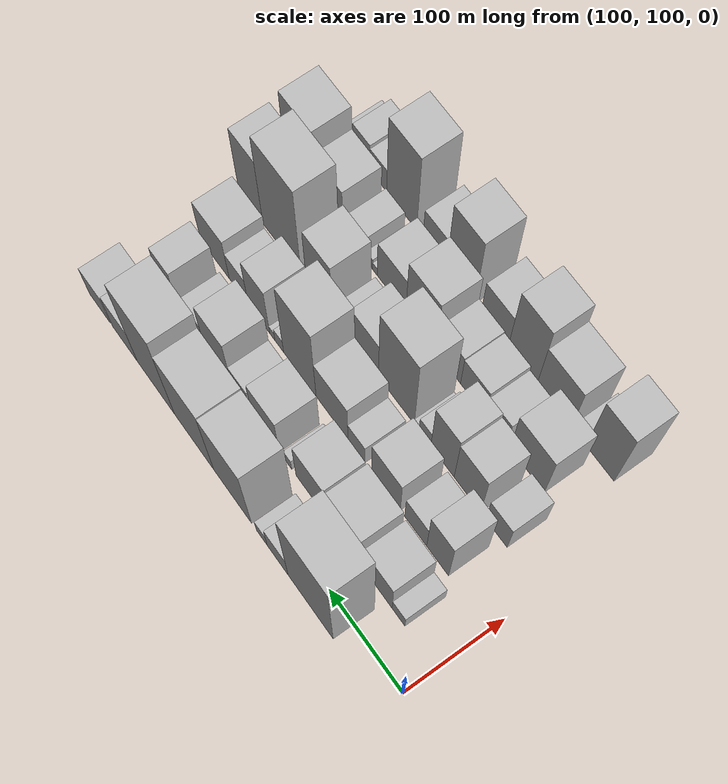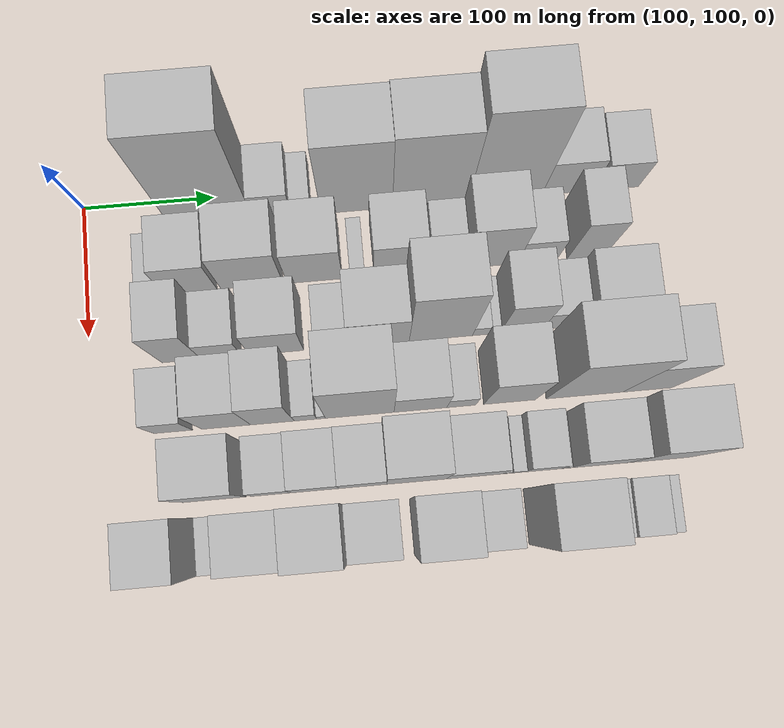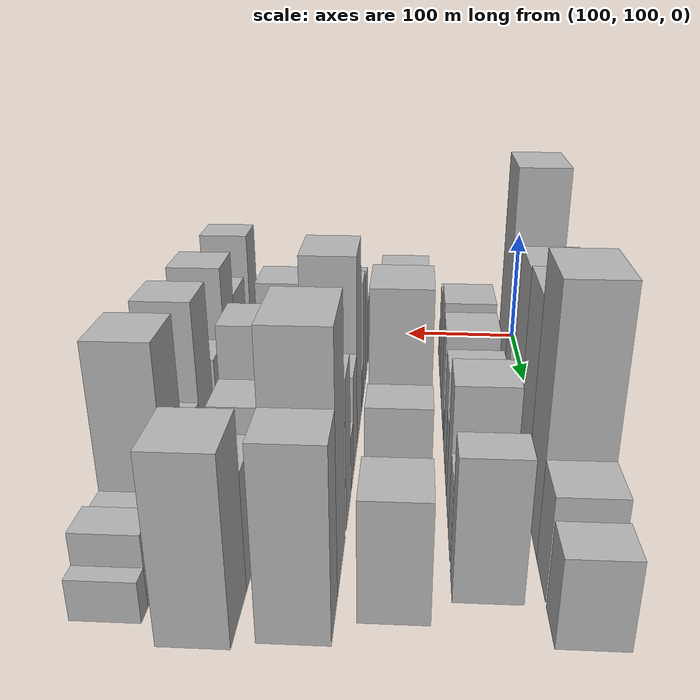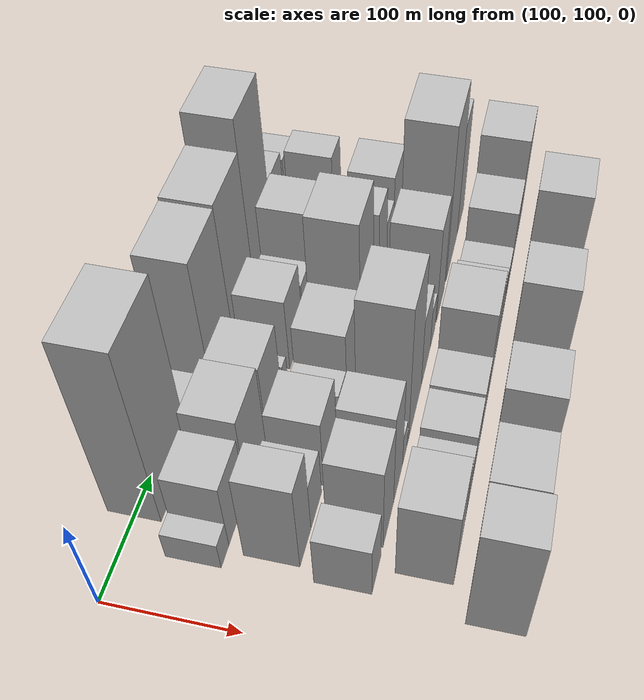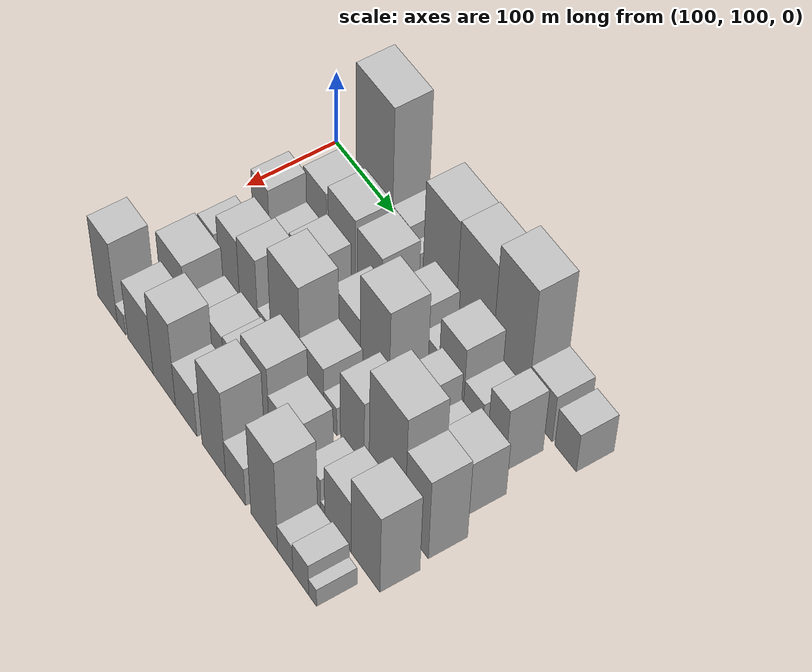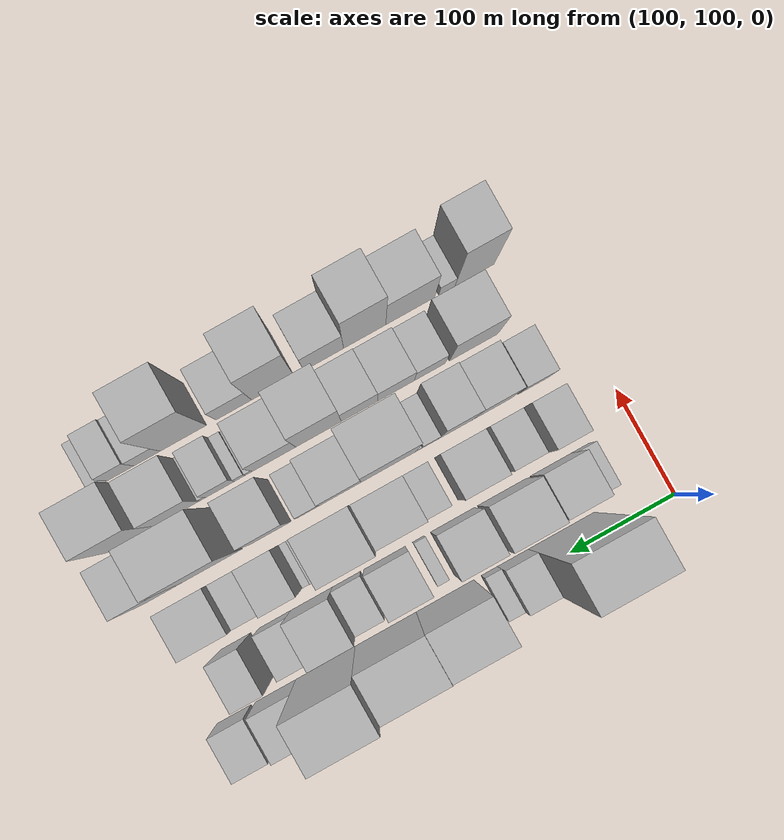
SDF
<sdf version="1.6">
 <world name="default">
  <model name="building_34">
   <static>1</static>
   <pose>100.0000 197.2322 0 0.000000 0.000000 0.000000</pose>
   <link name="link">
    <pose>0 0 94.50 0 0 0</pose>
    <collision name="collision"><geometry><box><size>40.0000 62.6101 189.0000</size></box></geometry></collision>
    <visual name="visual">
     <cast_shadows>0</cast_shadows>
     <geometry><box><size>40.0000 62.6101 189.0000</size></box></geometry>
     <material>
      <script>
       <uri>model://HANNAS_wall/materials/scripts</uri>
       <uri>model://HANNAS_wall/materials/textures</uri>
       <name>vrc/HANNAS_wall</name>
      </script>
     </material>
    </visual>
   </link>
  </model>
  <model name="building_35">
   <static>1</static>
   <pose>100.0000 243.2534 0 0.000000 0.000000 0.000000</pose>
   <link name="link">
    <pose>0 0 27.00 0 0 0</pose>
    <collision name="collision"><geometry><box><size>40.0000 29.4323 54.0000</size></box></geometry></collision>
    <visual name="visual">
     <cast_shadows>0</cast_shadows>
     <geometry><box><size>40.0000 29.4323 54.0000</size></box></geometry>
     <material>
      <script>
       <uri>model://HANNAS_wall/materials/scripts</uri>
       <uri>model://HANNAS_wall/materials/textures</uri>
       <name>vrc/HANNAS_wall</name>
      </script>
     </material>
    </visual>
   </link>
  </model>
  <model name="building_36">
   <static>1</static>
   <pose>100.0000 265.6831 0 0.000000 0.000000 0.000000</pose>
   <link name="link">
    <pose>0 0 15.00 0 0 0</pose>
    <collision name="collision"><geometry><box><size>40.0000 15.4270 30.0000</size></box></geometry></collision>
    <visual name="visual">
     <cast_shadows>0</cast_shadows>
     <geometry><box><size>40.0000 15.4270 30.0000</size></box></geometry>
     <material>
      <script>
       <uri>model://HANNAS_wall/materials/scripts</uri>
       <uri>model://HANNAS_wall/materials/textures</uri>
       <name>vrc/HANNAS_wall</name>
      </script>
     </material>
    </visual>
   </link>
  </model>
  <model name="building_37">
   <static>1</static>
   <pose>100.0000 307.7641 0 0.000000 0.000000 0.000000</pose>
   <link name="link">
    <pose>0 0 72.00 0 0 0</pose>
    <collision name="collision"><geometry><box><size>40.0000 54.7350 144.0000</size></box></geometry></collision>
    <visual name="visual">
     <cast_shadows>0</cast_shadows>
     <geometry><box><size>40.0000 54.7350 144.0000</size></box></geometry>
     <material>
      <script>
       <uri>model://HANNAS_wall/materials/scripts</uri>
       <uri>model://HANNAS_wall/materials/textures</uri>
       <name>vrc/HANNAS_wall</name>
      </script>
     </material>
    </visual>
   </link>
  </model>
  <model name="building_38">
   <static>1</static>
   <pose>100.0000 364.0918 0 0.000000 0.000000 0.000000</pose>
   <link name="link">
    <pose>0 0 73.50 0 0 0</pose>
    <collision name="collision"><geometry><box><size>40.0000 57.9204 147.0000</size></box></geometry></collision>
    <visual name="visual">
     <cast_shadows>0</cast_shadows>
     <geometry><box><size>40.0000 57.9204 147.0000</size></box></geometry>
     <material>
      <script>
       <uri>model://HANNAS_wall/materials/scripts</uri>
       <uri>model://HANNAS_wall/materials/textures</uri>
       <name>vrc/HANNAS_wall</name>
      </script>
     </material>
    </visual>
   </link>
  </model>
  <model name="building_39">
   <static>1</static>
   <pose>100.0000 421.2244 0 0.000000 0.000000 0.000000</pose>
   <link name="link">
    <pose>0 0 88.50 0 0 0</pose>
    <collision name="collision"><geometry><box><size>40.0000 56.3448 177.0000</size></box></geometry></collision>
    <visual name="visual">
     <cast_shadows>0</cast_shadows>
     <geometry><box><size>40.0000 56.3448 177.0000</size></box></geometry>
     <material>
      <script>
       <uri>model://HANNAS_wall/materials/scripts</uri>
       <uri>model://HANNAS_wall/materials/textures</uri>
       <name>vrc/HANNAS_wall</name>
      </script>
     </material>
    </visual>
   </link>
  </model>
  <model name="building_40">
   <static>1</static>
   <pose>100.0000 468.6178 0 0.000000 0.000000 0.000000</pose>
   <link name="link">
    <pose>0 0 34.50 0 0 0</pose>
    <collision name="collision"><geometry><box><size>40.0000 38.4421 69.0000</size></box></geometry></collision>
    <visual name="visual">
     <cast_shadows>0</cast_shadows>
     <geometry><box><size>40.0000 38.4421 69.0000</size></box></geometry>
     <material>
      <script>
       <uri>model://HANNAS_wall/materials/scripts</uri>
       <uri>model://HANNAS_wall/materials/textures</uri>
       <name>vrc/HANNAS_wall</name>
      </script>
     </material>
    </visual>
   </link>
  </model>
  <model name="building_41">
   <static>1</static>
   <pose>100.0000 508.0312 0 0.000000 0.000000 0.000000</pose>
   <link name="link">
    <pose>0 0 28.50 0 0 0</pose>
    <collision name="collision"><geometry><box><size>40.0000 32.3847 57.0000</size></box></geometry></collision>
    <visual name="visual">
     <cast_shadows>0</cast_shadows>
     <geometry><box><size>40.0000 32.3847 57.0000</size></box></geometry>
     <material>
      <script>
       <uri>model://HANNAS_wall/materials/scripts</uri>
       <uri>model://HANNAS_wall/materials/textures</uri>
       <name>vrc/HANNAS_wall</name>
      </script>
     </material>
    </visual>
   </link>
  </model>
  <model name="building_78">
   <static>1</static>
   <pose>152.0000 149.9061 0 0.000000 0.000000 0.000000</pose>
   <link name="link">
    <pose>0 0 15.00 0 0 0</pose>
    <collision name="collision"><geometry><box><size>40.0000 17.3303 30.0000</size></box></geometry></collision>
    <visual name="visual">
     <cast_shadows>0</cast_shadows>
     <geometry><box><size>40.0000 17.3303 30.0000</size></box></geometry>
     <material>
      <script>
       <uri>model://HANNAS_wall/materials/scripts</uri>
       <uri>model://HANNAS_wall/materials/textures</uri>
       <name>vrc/HANNAS_wall</name>
      </script>
     </material>
    </visual>
   </link>
  </model>
  <model name="building_79">
   <static>1</static>
   <pose>152.0000 178.2462 0 0.000000 0.000000 0.000000</pose>
   <link name="link">
    <pose>0 0 36.00 0 0 0</pose>
    <collision name="collision"><geometry><box><size>40.0000 39.3499 72.0000</size></box></geometry></collision>
    <visual name="visual">
     <cast_shadows>0</cast_shadows>
     <geometry><box><size>40.0000 39.3499 72.0000</size></box></geometry>
     <material>
      <script>
       <uri>model://HANNAS_wall/materials/scripts</uri>
       <uri>model://HANNAS_wall/materials/textures</uri>
       <name>vrc/HANNAS_wall</name>
      </script>
     </material>
    </visual>
   </link>
  </model>
  <model name="building_80">
   <static>1</static>
   <pose>152.0000 224.3932 0 0.000000 0.000000 0.000000</pose>
   <link name="link">
    <pose>0 0 43.50 0 0 0</pose>
    <collision name="collision"><geometry><box><size>40.0000 46.9440 87.0000</size></box></geometry></collision>
    <visual name="visual">
     <cast_shadows>0</cast_shadows>
     <geometry><box><size>40.0000 46.9440 87.0000</size></box></geometry>
     <material>
      <script>
       <uri>model://HANNAS_wall/materials/scripts</uri>
       <uri>model://HANNAS_wall/materials/textures</uri>
       <name>vrc/HANNAS_wall</name>
      </script>
     </material>
    </visual>
   </link>
  </model>
  <model name="building_81">
   <static>1</static>
   <pose>152.0000 271.6596 0 0.000000 0.000000 0.000000</pose>
   <link name="link">
    <pose>0 0 40.50 0 0 0</pose>
    <collision name="collision"><geometry><box><size>40.0000 41.5888 81.0000</size></box></geometry></collision>
    <visual name="visual">
     <cast_shadows>0</cast_shadows>
     <geometry><box><size>40.0000 41.5888 81.0000</size></box></geometry>
     <material>
      <script>
       <uri>model://HANNAS_wall/materials/scripts</uri>
       <uri>model://HANNAS_wall/materials/textures</uri>
       <name>vrc/HANNAS_wall</name>
      </script>
     </material>
    </visual>
   </link>
  </model>
  <model name="building_82">
   <static>1</static>
   <pose>152.0000 303.9292 0 0.000000 0.000000 0.000000</pose>
   <link name="link">
    <pose>0 0 12.00 0 0 0</pose>
    <collision name="collision"><geometry><box><size>40.0000 10.9506 24.0000</size></box></geometry></collision>
    <visual name="visual">
     <cast_shadows>0</cast_shadows>
     <geometry><box><size>40.0000 10.9506 24.0000</size></box></geometry>
     <material>
      <script>
       <uri>model://HANNAS_wall/materials/scripts</uri>
       <uri>model://HANNAS_wall/materials/textures</uri>
       <name>vrc/HANNAS_wall</name>
      </script>
     </material>
    </visual>
   </link>
  </model>
  <model name="building_83">
   <static>1</static>
   <pose>152.0000 336.1044 0 0.000000 0.000000 0.000000</pose>
   <link name="link">
    <pose>0 0 39.00 0 0 0</pose>
    <collision name="collision"><geometry><box><size>40.0000 39.3997 78.0000</size></box></geometry></collision>
    <visual name="visual">
     <cast_shadows>0</cast_shadows>
     <geometry><box><size>40.0000 39.3997 78.0000</size></box></geometry>
     <material>
      <script>
       <uri>model://HANNAS_wall/materials/scripts</uri>
       <uri>model://HANNAS_wall/materials/textures</uri>
       <name>vrc/HANNAS_wall</name>
      </script>
     </material>
    </visual>
   </link>
  </model>
  <model name="building_84">
   <static>1</static>
   <pose>152.0000 372.1476 0 0.000000 0.000000 0.000000</pose>
   <link name="link">
    <pose>0 0 25.50 0 0 0</pose>
    <collision name="collision"><geometry><box><size>40.0000 26.6867 51.0000</size></box></geometry></collision>
    <visual name="visual">
     <cast_shadows>0</cast_shadows>
     <geometry><box><size>40.0000 26.6867 51.0000</size></box></geometry>
     <material>
      <script>
       <uri>model://HANNAS_wall/materials/scripts</uri>
       <uri>model://HANNAS_wall/materials/textures</uri>
       <name>vrc/HANNAS_wall</name>
      </script>
     </material>
    </visual>
   </link>
  </model>
  <model name="building_85">
   <static>1</static>
   <pose>152.0000 405.2490 0 0.000000 0.000000 0.000000</pose>
   <link name="link">
    <pose>0 0 51.00 0 0 0</pose>
    <collision name="collision"><geometry><box><size>40.0000 39.5160 102.0000</size></box></geometry></collision>
    <visual name="visual">
     <cast_shadows>0</cast_shadows>
     <geometry><box><size>40.0000 39.5160 102.0000</size></box></geometry>
     <material>
      <script>
       <uri>model://HANNAS_wall/materials/scripts</uri>
       <uri>model://HANNAS_wall/materials/textures</uri>
       <name>vrc/HANNAS_wall</name>
      </script>
     </material>
    </visual>
   </link>
  </model>
  <model name="building_86">
   <static>1</static>
   <pose>152.0000 439.9806 0 0.000000 0.000000 0.000000</pose>
   <link name="link">
    <pose>0 0 28.50 0 0 0</pose>
    <collision name="collision"><geometry><box><size>40.0000 29.9473 57.0000</size></box></geometry></collision>
    <visual name="visual">
     <cast_shadows>0</cast_shadows>
     <geometry><box><size>40.0000 29.9473 57.0000</size></box></geometry>
     <material>
      <script>
       <uri>model://HANNAS_wall/materials/scripts</uri>
       <uri>model://HANNAS_wall/materials/textures</uri>
       <name>vrc/HANNAS_wall</name>
      </script>
     </material>
    </visual>
   </link>
  </model>
  <model name="building_87">
   <static>1</static>
   <pose>152.0000 476.9784 0 0.000000 0.000000 0.000000</pose>
   <link name="link">
    <pose>0 0 46.50 0 0 0</pose>
    <collision name="collision"><geometry><box><size>40.0000 28.0482 93.0000</size></box></geometry></collision>
    <visual name="visual">
     <cast_shadows>0</cast_shadows>
     <geometry><box><size>40.0000 28.0482 93.0000</size></box></geometry>
     <material>
      <script>
       <uri>model://HANNAS_wall/materials/scripts</uri>
       <uri>model://HANNAS_wall/materials/textures</uri>
       <name>vrc/HANNAS_wall</name>
      </script>
     </material>
    </visual>
   </link>
  </model>
  <model name="building_128">
   <static>1</static>
   <pose>204.0000 168.3808 0 0.000000 0.000000 0.000000</pose>
   <link name="link">
    <pose>0 0 48.00 0 0 0</pose>
    <collision name="collision"><geometry><box><size>40.0000 29.6298 96.0000</size></box></geometry></collision>
    <visual name="visual">
     <cast_shadows>0</cast_shadows>
     <geometry><box><size>40.0000 29.6298 96.0000</size></box></geometry>
     <material>
      <script>
       <uri>model://HANNAS_wall/materials/scripts</uri>
       <uri>model://HANNAS_wall/materials/textures</uri>
       <name>vrc/HANNAS_wall</name>
      </script>
     </material>
    </visual>
   </link>
  </model>
  <model name="building_129">
   <static>1</static>
   <pose>204.0000 198.1995 0 0.000000 0.000000 0.000000</pose>
   <link name="link">
    <pose>0 0 27.00 0 0 0</pose>
    <collision name="collision"><geometry><box><size>40.0000 30.0076 54.0000</size></box></geometry></collision>
    <visual name="visual">
     <cast_shadows>0</cast_shadows>
     <geometry><box><size>40.0000 30.0076 54.0000</size></box></geometry>
     <material>
      <script>
       <uri>model://HANNAS_wall/materials/scripts</uri>
       <uri>model://HANNAS_wall/materials/textures</uri>
       <name>vrc/HANNAS_wall</name>
      </script>
     </material>
    </visual>
   </link>
  </model>
  <model name="building_130">
   <static>1</static>
   <pose>204.0000 239.2770 0 0.000000 0.000000 0.000000</pose>
   <link name="link">
    <pose>0 0 37.50 0 0 0</pose>
    <collision name="collision"><geometry><box><size>40.0000 40.1474 75.0000</size></box></geometry></collision>
    <visual name="visual">
     <cast_shadows>0</cast_shadows>
     <geometry><box><size>40.0000 40.1474 75.0000</size></box></geometry>
     <material>
      <script>
       <uri>model://HANNAS_wall/materials/scripts</uri>
       <uri>model://HANNAS_wall/materials/textures</uri>
       <name>vrc/HANNAS_wall</name>
      </script>
     </material>
    </visual>
   </link>
  </model>
  <model name="building_131">
   <static>1</static>
   <pose>204.0000 280.3859 0 0.000000 0.000000 0.000000</pose>
   <link name="link">
    <pose>0 0 21.00 0 0 0</pose>
    <collision name="collision"><geometry><box><size>40.0000 24.0703 42.0000</size></box></geometry></collision>
    <visual name="visual">
     <cast_shadows>0</cast_shadows>
     <geometry><box><size>40.0000 24.0703 42.0000</size></box></geometry>
     <material>
      <script>
       <uri>model://HANNAS_wall/materials/scripts</uri>
       <uri>model://HANNAS_wall/materials/textures</uri>
       <name>vrc/HANNAS_wall</name>
      </script>
     </material>
    </visual>
   </link>
  </model>
  <model name="building_132">
   <static>1</static>
   <pose>204.0000 315.2987 0 0.000000 0.000000 0.000000</pose>
   <link name="link">
    <pose>0 0 40.50 0 0 0</pose>
    <collision name="collision"><geometry><box><size>40.0000 45.7554 81.0000</size></box></geometry></collision>
    <visual name="visual">
     <cast_shadows>0</cast_shadows>
     <geometry><box><size>40.0000 45.7554 81.0000</size></box></geometry>
     <material>
      <script>
       <uri>model://HANNAS_wall/materials/scripts</uri>
       <uri>model://HANNAS_wall/materials/textures</uri>
       <name>vrc/HANNAS_wall</name>
      </script>
     </material>
    </visual>
   </link>
  </model>
  <model name="building_133">
   <static>1</static>
   <pose>204.0000 361.9023 0 0.000000 0.000000 0.000000</pose>
   <link name="link">
    <pose>0 0 73.50 0 0 0</pose>
    <collision name="collision"><geometry><box><size>40.0000 47.4518 147.0000</size></box></geometry></collision>
    <visual name="visual">
     <cast_shadows>0</cast_shadows>
     <geometry><box><size>40.0000 47.4518 147.0000</size></box></geometry>
     <material>
      <script>
       <uri>model://HANNAS_wall/materials/scripts</uri>
       <uri>model://HANNAS_wall/materials/textures</uri>
       <name>vrc/HANNAS_wall</name>
      </script>
     </material>
    </visual>
   </link>
  </model>
  <model name="building_134">
   <static>1</static>
   <pose>204.0000 392.0305 0 0.000000 0.000000 0.000000</pose>
   <link name="link">
    <pose>0 0 13.50 0 0 0</pose>
    <collision name="collision"><geometry><box><size>40.0000 12.8045 27.0000</size></box></geometry></collision>
    <visual name="visual">
     <cast_shadows>0</cast_shadows>
     <geometry><box><size>40.0000 12.8045 27.0000</size></box></geometry>
     <material>
      <script>
       <uri>model://HANNAS_wall/materials/scripts</uri>
       <uri>model://HANNAS_wall/materials/textures</uri>
       <name>vrc/HANNAS_wall</name>
      </script>
     </material>
    </visual>
   </link>
  </model>
  <model name="building_135">
   <static>1</static>
   <pose>204.0000 402.2379 0 0.000000 0.000000 0.000000</pose>
   <link name="link">
    <pose>0 0 9.00 0 0 0</pose>
    <collision name="collision"><geometry><box><size>40.0000 7.6104 18.0000</size></box></geometry></collision>
    <visual name="visual">
     <cast_shadows>0</cast_shadows>
     <geometry><box><size>40.0000 7.6104 18.0000</size></box></geometry>
     <material>
      <script>
       <uri>model://HANNAS_wall/materials/scripts</uri>
       <uri>model://HANNAS_wall/materials/textures</uri>
       <name>vrc/HANNAS_wall</name>
      </script>
     </material>
    </visual>
   </link>
  </model>
  <model name="building_136">
   <static>1</static>
   <pose>204.0000 422.0237 0 0.000000 0.000000 0.000000</pose>
   <link name="link">
    <pose>0 0 46.50 0 0 0</pose>
    <collision name="collision"><geometry><box><size>40.0000 31.9613 93.0000</size></box></geometry></collision>
    <visual name="visual">
     <cast_shadows>0</cast_shadows>
     <geometry><box><size>40.0000 31.9613 93.0000</size></box></geometry>
     <material>
      <script>
       <uri>model://HANNAS_wall/materials/scripts</uri>
       <uri>model://HANNAS_wall/materials/textures</uri>
       <name>vrc/HANNAS_wall</name>
      </script>
     </material>
    </visual>
   </link>
  </model>
  <model name="building_137">
   <static>1</static>
   <pose>204.0000 452.4286 0 0.000000 0.000000 0.000000</pose>
   <link name="link">
    <pose>0 0 27.00 0 0 0</pose>
    <collision name="collision"><geometry><box><size>40.0000 28.8484 54.0000</size></box></geometry></collision>
    <visual name="visual">
     <cast_shadows>0</cast_shadows>
     <geometry><box><size>40.0000 28.8484 54.0000</size></box></geometry>
     <material>
      <script>
       <uri>model://HANNAS_wall/materials/scripts</uri>
       <uri>model://HANNAS_wall/materials/textures</uri>
       <name>vrc/HANNAS_wall</name>
      </script>
     </material>
    </visual>
   </link>
  </model>
  <model name="building_138">
   <static>1</static>
   <pose>204.0000 488.7313 0 0.000000 0.000000 0.000000</pose>
   <link name="link">
    <pose>0 0 39.00 0 0 0</pose>
    <collision name="collision"><geometry><box><size>40.0000 43.7572 78.0000</size></box></geometry></collision>
    <visual name="visual">
     <cast_shadows>0</cast_shadows>
     <geometry><box><size>40.0000 43.7572 78.0000</size></box></geometry>
     <material>
      <script>
       <uri>model://HANNAS_wall/materials/scripts</uri>
       <uri>model://HANNAS_wall/materials/textures</uri>
       <name>vrc/HANNAS_wall</name>
      </script>
     </material>
    </visual>
   </link>
  </model>
  <model name="building_182">
   <static>1</static>
   <pose>256.0000 158.9666 0 0.000000 0.000000 0.000000</pose>
   <link name="link">
    <pose>0 0 28.50 0 0 0</pose>
    <collision name="collision"><geometry><box><size>40.0000 28.5576 57.0000</size></box></geometry></collision>
    <visual name="visual">
     <cast_shadows>0</cast_shadows>
     <geometry><box><size>40.0000 28.5576 57.0000</size></box></geometry>
     <material>
      <script>
       <uri>model://HANNAS_wall/materials/scripts</uri>
       <uri>model://HANNAS_wall/materials/textures</uri>
       <name>vrc/HANNAS_wall</name>
      </script>
     </material>
    </visual>
   </link>
  </model>
  <model name="building_183">
   <static>1</static>
   <pose>256.0000 198.2724 0 0.000000 0.000000 0.000000</pose>
   <link name="link">
    <pose>0 0 46.50 0 0 0</pose>
    <collision name="collision"><geometry><box><size>40.0000 36.0538 93.0000</size></box></geometry></collision>
    <visual name="visual">
     <cast_shadows>0</cast_shadows>
     <geometry><box><size>40.0000 36.0538 93.0000</size></box></geometry>
     <material>
      <script>
       <uri>model://HANNAS_wall/materials/scripts</uri>
       <uri>model://HANNAS_wall/materials/textures</uri>
       <name>vrc/HANNAS_wall</name>
      </script>
     </material>
    </visual>
   </link>
  </model>
  <model name="building_184">
   <static>1</static>
   <pose>256.0000 232.3657 0 0.000000 0.000000 0.000000</pose>
   <link name="link">
    <pose>0 0 51.00 0 0 0</pose>
    <collision name="collision"><geometry><box><size>40.0000 32.1329 102.0000</size></box></geometry></collision>
    <visual name="visual">
     <cast_shadows>0</cast_shadows>
     <geometry><box><size>40.0000 32.1329 102.0000</size></box></geometry>
     <material>
      <script>
       <uri>model://HANNAS_wall/materials/scripts</uri>
       <uri>model://HANNAS_wall/materials/textures</uri>
       <name>vrc/HANNAS_wall</name>
      </script>
     </material>
    </visual>
   </link>
  </model>
  <model name="building_185">
   <static>1</static>
   <pose>256.0000 256.6941 0 0.000000 0.000000 0.000000</pose>
   <link name="link">
    <pose>0 0 16.50 0 0 0</pose>
    <collision name="collision"><geometry><box><size>40.0000 16.5238 33.0000</size></box></geometry></collision>
    <visual name="visual">
     <cast_shadows>0</cast_shadows>
     <geometry><box><size>40.0000 16.5238 33.0000</size></box></geometry>
     <material>
      <script>
       <uri>model://HANNAS_wall/materials/scripts</uri>
       <uri>model://HANNAS_wall/materials/textures</uri>
       <name>vrc/HANNAS_wall</name>
      </script>
     </material>
    </visual>
   </link>
  </model>
  <model name="building_186">
   <static>1</static>
   <pose>256.0000 268.1876 0 0.000000 0.000000 0.000000</pose>
   <link name="link">
    <pose>0 0 7.50 0 0 0</pose>
    <collision name="collision"><geometry><box><size>40.0000 6.4632 15.0000</size></box></geometry></collision>
    <visual name="visual">
     <cast_shadows>0</cast_shadows>
     <geometry><box><size>40.0000 6.4632 15.0000</size></box></geometry>
     <material>
      <script>
       <uri>model://HANNAS_wall/materials/scripts</uri>
       <uri>model://HANNAS_wall/materials/textures</uri>
       <name>vrc/HANNAS_wall</name>
      </script>
     </material>
    </visual>
   </link>
  </model>
  <model name="building_187">
   <static>1</static>
   <pose>256.0000 296.7433 0 0.000000 0.000000 0.000000</pose>
   <link name="link">
    <pose>0 0 73.50 0 0 0</pose>
    <collision name="collision"><geometry><box><size>40.0000 50.6482 147.0000</size></box></geometry></collision>
    <visual name="visual">
     <cast_shadows>0</cast_shadows>
     <geometry><box><size>40.0000 50.6482 147.0000</size></box></geometry>
     <material>
      <script>
       <uri>model://HANNAS_wall/materials/scripts</uri>
       <uri>model://HANNAS_wall/materials/textures</uri>
       <name>vrc/HANNAS_wall</name>
      </script>
     </material>
    </visual>
   </link>
  </model>
  <model name="building_188">
   <static>1</static>
   <pose>256.0000 341.6070 0 0.000000 0.000000 0.000000</pose>
   <link name="link">
    <pose>0 0 37.50 0 0 0</pose>
    <collision name="collision"><geometry><box><size>40.0000 39.0792 75.0000</size></box></geometry></collision>
    <visual name="visual">
     <cast_shadows>0</cast_shadows>
     <geometry><box><size>40.0000 39.0792 75.0000</size></box></geometry>
     <material>
      <script>
       <uri>model://HANNAS_wall/materials/scripts</uri>
       <uri>model://HANNAS_wall/materials/textures</uri>
       <name>vrc/HANNAS_wall</name>
      </script>
     </material>
    </visual>
   </link>
  </model>
  <model name="building_189">
   <static>1</static>
   <pose>256.0000 371.8704 0 0.000000 0.000000 0.000000</pose>
   <link name="link">
    <pose>0 0 21.00 0 0 0</pose>
    <collision name="collision"><geometry><box><size>40.0000 21.4474 42.0000</size></box></geometry></collision>
    <visual name="visual">
     <cast_shadows>0</cast_shadows>
     <geometry><box><size>40.0000 21.4474 42.0000</size></box></geometry>
     <material>
      <script>
       <uri>model://HANNAS_wall/materials/scripts</uri>
       <uri>model://HANNAS_wall/materials/textures</uri>
       <name>vrc/HANNAS_wall</name>
      </script>
     </material>
    </visual>
   </link>
  </model>
  <model name="building_190">
   <static>1</static>
   <pose>256.0000 407.8275 0 0.000000 0.000000 0.000000</pose>
   <link name="link">
    <pose>0 0 52.50 0 0 0</pose>
    <collision name="collision"><geometry><box><size>40.0000 38.4668 105.0000</size></box></geometry></collision>
    <visual name="visual">
     <cast_shadows>0</cast_shadows>
     <geometry><box><size>40.0000 38.4668 105.0000</size></box></geometry>
     <material>
      <script>
       <uri>model://HANNAS_wall/materials/scripts</uri>
       <uri>model://HANNAS_wall/materials/textures</uri>
       <name>vrc/HANNAS_wall</name>
      </script>
     </material>
    </visual>
   </link>
  </model>
  <model name="building_191">
   <static>1</static>
   <pose>256.0000 463.6606 0 0.000000 0.000000 0.000000</pose>
   <link name="link">
    <pose>0 0 82.50 0 0 0</pose>
    <collision name="collision"><geometry><box><size>40.0000 57.1994 165.0000</size></box></geometry></collision>
    <visual name="visual">
     <cast_shadows>0</cast_shadows>
     <geometry><box><size>40.0000 57.1994 165.0000</size></box></geometry>
     <material>
      <script>
       <uri>model://HANNAS_wall/materials/scripts</uri>
       <uri>model://HANNAS_wall/materials/textures</uri>
       <name>vrc/HANNAS_wall</name>
      </script>
     </material>
    </visual>
   </link>
  </model>
  <model name="building_192">
   <static>1</static>
   <pose>256.0000 510.5695 0 0.000000 0.000000 0.000000</pose>
   <link name="link">
    <pose>0 0 60.00 0 0 0</pose>
    <collision name="collision"><geometry><box><size>40.0000 36.6184 120.0000</size></box></geometry></collision>
    <visual name="visual">
     <cast_shadows>0</cast_shadows>
     <geometry><box><size>40.0000 36.6184 120.0000</size></box></geometry>
     <material>
      <script>
       <uri>model://HANNAS_wall/materials/scripts</uri>
       <uri>model://HANNAS_wall/materials/textures</uri>
       <name>vrc/HANNAS_wall</name>
      </script>
     </material>
    </visual>
   </link>
  </model>
  <model name="building_236">
   <static>1</static>
   <pose>308.0000 186.3608 0 0.000000 0.000000 0.000000</pose>
   <link name="link">
    <pose>0 0 43.50 0 0 0</pose>
    <collision name="collision"><geometry><box><size>40.0000 46.0390 87.0000</size></box></geometry></collision>
    <visual name="visual">
     <cast_shadows>0</cast_shadows>
     <geometry><box><size>40.0000 46.0390 87.0000</size></box></geometry>
     <material>
      <script>
       <uri>model://HANNAS_wall/materials/scripts</uri>
       <uri>model://HANNAS_wall/materials/textures</uri>
       <name>vrc/HANNAS_wall</name>
      </script>
     </material>
    </visual>
   </link>
  </model>
  <model name="building_237">
   <static>1</static>
   <pose>308.0000 228.1438 0 0.000000 0.000000 0.000000</pose>
   <link name="link">
    <pose>0 0 25.50 0 0 0</pose>
    <collision name="collision"><geometry><box><size>40.0000 29.5269 51.0000</size></box></geometry></collision>
    <visual name="visual">
     <cast_shadows>0</cast_shadows>
     <geometry><box><size>40.0000 29.5269 51.0000</size></box></geometry>
     <material>
      <script>
       <uri>model://HANNAS_wall/materials/scripts</uri>
       <uri>model://HANNAS_wall/materials/textures</uri>
       <name>vrc/HANNAS_wall</name>
      </script>
     </material>
    </visual>
   </link>
  </model>
  <model name="building_238">
   <static>1</static>
   <pose>308.0000 260.2630 0 0.000000 0.000000 0.000000</pose>
   <link name="link">
    <pose>0 0 30.00 0 0 0</pose>
    <collision name="collision"><geometry><box><size>40.0000 34.7115 60.0000</size></box></geometry></collision>
    <visual name="visual">
     <cast_shadows>0</cast_shadows>
     <geometry><box><size>40.0000 34.7115 60.0000</size></box></geometry>
     <material>
      <script>
       <uri>model://HANNAS_wall/materials/scripts</uri>
       <uri>model://HANNAS_wall/materials/textures</uri>
       <name>vrc/HANNAS_wall</name>
      </script>
     </material>
    </visual>
   </link>
  </model>
  <model name="building_239">
   <static>1</static>
   <pose>308.0000 294.8019 0 0.000000 0.000000 0.000000</pose>
   <link name="link">
    <pose>0 0 31.50 0 0 0</pose>
    <collision name="collision"><geometry><box><size>40.0000 34.3663 63.0000</size></box></geometry></collision>
    <visual name="visual">
     <cast_shadows>0</cast_shadows>
     <geometry><box><size>40.0000 34.3663 63.0000</size></box></geometry>
     <material>
      <script>
       <uri>model://HANNAS_wall/materials/scripts</uri>
       <uri>model://HANNAS_wall/materials/textures</uri>
       <name>vrc/HANNAS_wall</name>
      </script>
     </material>
    </visual>
   </link>
  </model>
  <model name="building_240">
   <static>1</static>
   <pose>308.0000 333.5107 0 0.000000 0.000000 0.000000</pose>
   <link name="link">
    <pose>0 0 54.00 0 0 0</pose>
    <collision name="collision"><geometry><box><size>40.0000 43.0513 108.0000</size></box></geometry></collision>
    <visual name="visual">
     <cast_shadows>0</cast_shadows>
     <geometry><box><size>40.0000 43.0513 108.0000</size></box></geometry>
     <material>
      <script>
       <uri>model://HANNAS_wall/materials/scripts</uri>
       <uri>model://HANNAS_wall/materials/textures</uri>
       <name>vrc/HANNAS_wall</name>
      </script>
     </material>
    </visual>
   </link>
  </model>
  <model name="building_241">
   <static>1</static>
   <pose>308.0000 375.6173 0 0.000000 0.000000 0.000000</pose>
   <link name="link">
    <pose>0 0 34.50 0 0 0</pose>
    <collision name="collision"><geometry><box><size>40.0000 41.1620 69.0000</size></box></geometry></collision>
    <visual name="visual">
     <cast_shadows>0</cast_shadows>
     <geometry><box><size>40.0000 41.1620 69.0000</size></box></geometry>
     <material>
      <script>
       <uri>model://HANNAS_wall/materials/scripts</uri>
       <uri>model://HANNAS_wall/materials/textures</uri>
       <name>vrc/HANNAS_wall</name>
      </script>
     </material>
    </visual>
   </link>
  </model>
  <model name="building_242">
   <static>1</static>
   <pose>308.0000 399.5502 0 0.000000 0.000000 0.000000</pose>
   <link name="link">
    <pose>0 0 7.50 0 0 0</pose>
    <collision name="collision"><geometry><box><size>40.0000 6.7037 15.0000</size></box></geometry></collision>
    <visual name="visual">
     <cast_shadows>0</cast_shadows>
     <geometry><box><size>40.0000 6.7037 15.0000</size></box></geometry>
     <material>
      <script>
       <uri>model://HANNAS_wall/materials/scripts</uri>
       <uri>model://HANNAS_wall/materials/textures</uri>
       <name>vrc/HANNAS_wall</name>
      </script>
     </material>
    </visual>
   </link>
  </model>
  <model name="building_243">
   <static>1</static>
   <pose>308.0000 407.8527 0 0.000000 0.000000 0.000000</pose>
   <link name="link">
    <pose>0 0 10.50 0 0 0</pose>
    <collision name="collision"><geometry><box><size>40.0000 9.9012 21.0000</size></box></geometry></collision>
    <visual name="visual">
     <cast_shadows>0</cast_shadows>
     <geometry><box><size>40.0000 9.9012 21.0000</size></box></geometry>
     <material>
      <script>
       <uri>model://HANNAS_wall/materials/scripts</uri>
       <uri>model://HANNAS_wall/materials/textures</uri>
       <name>vrc/HANNAS_wall</name>
      </script>
     </material>
    </visual>
   </link>
  </model>
  <model name="building_244">
   <static>1</static>
   <pose>308.0000 426.3640 0 0.000000 0.000000 0.000000</pose>
   <link name="link">
    <pose>0 0 24.00 0 0 0</pose>
    <collision name="collision"><geometry><box><size>40.0000 27.1215 48.0000</size></box></geometry></collision>
    <visual name="visual">
     <cast_shadows>0</cast_shadows>
     <geometry><box><size>40.0000 27.1215 48.0000</size></box></geometry>
     <material>
      <script>
       <uri>model://HANNAS_wall/materials/scripts</uri>
       <uri>model://HANNAS_wall/materials/textures</uri>
       <name>vrc/HANNAS_wall</name>
      </script>
     </material>
    </visual>
   </link>
  </model>
  <model name="building_245">
   <static>1</static>
   <pose>308.0000 443.2237 0 0.000000 0.000000 0.000000</pose>
   <link name="link">
    <pose>0 0 7.50 0 0 0</pose>
    <collision name="collision"><geometry><box><size>40.0000 6.5978 15.0000</size></box></geometry></collision>
    <visual name="visual">
     <cast_shadows>0</cast_shadows>
     <geometry><box><size>40.0000 6.5978 15.0000</size></box></geometry>
     <material>
      <script>
       <uri>model://HANNAS_wall/materials/scripts</uri>
       <uri>model://HANNAS_wall/materials/textures</uri>
       <name>vrc/HANNAS_wall</name>
      </script>
     </material>
    </visual>
   </link>
  </model>
  <model name="building_246">
   <static>1</static>
   <pose>308.0000 467.6419 0 0.000000 0.000000 0.000000</pose>
   <link name="link">
    <pose>0 0 39.00 0 0 0</pose>
    <collision name="collision"><geometry><box><size>40.0000 42.2386 78.0000</size></box></geometry></collision>
    <visual name="visual">
     <cast_shadows>0</cast_shadows>
     <geometry><box><size>40.0000 42.2386 78.0000</size></box></geometry>
     <material>
      <script>
       <uri>model://HANNAS_wall/materials/scripts</uri>
       <uri>model://HANNAS_wall/materials/textures</uri>
       <name>vrc/HANNAS_wall</name>
      </script>
     </material>
    </visual>
   </link>
  </model>
  <model name="building_247">
   <static>1</static>
   <pose>308.0000 511.5937 0 0.000000 0.000000 0.000000</pose>
   <link name="link">
    <pose>0 0 58.50 0 0 0</pose>
    <collision name="collision"><geometry><box><size>40.0000 45.6651 117.0000</size></box></geometry></collision>
    <visual name="visual">
     <cast_shadows>0</cast_shadows>
     <geometry><box><size>40.0000 45.6651 117.0000</size></box></geometry>
     <material>
      <script>
       <uri>model://HANNAS_wall/materials/scripts</uri>
       <uri>model://HANNAS_wall/materials/textures</uri>
       <name>vrc/HANNAS_wall</name>
      </script>
     </material>
    </visual>
   </link>
  </model>
  <model name="building_292">
   <static>1</static>
   <pose>360.0000 156.3325 0 0.000000 0.000000 0.000000</pose>
   <link name="link">
    <pose>0 0 58.50 0 0 0</pose>
    <collision name="collision"><geometry><box><size>40.0000 37.0424 117.0000</size></box></geometry></collision>
    <visual name="visual">
     <cast_shadows>0</cast_shadows>
     <geometry><box><size>40.0000 37.0424 117.0000</size></box></geometry>
     <material>
      <script>
       <uri>model://HANNAS_wall/materials/scripts</uri>
       <uri>model://HANNAS_wall/materials/textures</uri>
       <name>vrc/HANNAS_wall</name>
      </script>
     </material>
    </visual>
   </link>
  </model>
  <model name="building_293">
   <static>1</static>
   <pose>360.0000 182.5610 0 0.000000 0.000000 0.000000</pose>
   <link name="link">
    <pose>0 0 15.00 0 0 0</pose>
    <collision name="collision"><geometry><box><size>40.0000 15.4146 30.0000</size></box></geometry></collision>
    <visual name="visual">
     <cast_shadows>0</cast_shadows>
     <geometry><box><size>40.0000 15.4146 30.0000</size></box></geometry>
     <material>
      <script>
       <uri>model://HANNAS_wall/materials/scripts</uri>
       <uri>model://HANNAS_wall/materials/textures</uri>
       <name>vrc/HANNAS_wall</name>
      </script>
     </material>
    </visual>
   </link>
  </model>
  <model name="building_294">
   <static>1</static>
   <pose>360.0000 217.4633 0 0.000000 0.000000 0.000000</pose>
   <link name="link">
    <pose>0 0 43.50 0 0 0</pose>
    <collision name="collision"><geometry><box><size>40.0000 46.3901 87.0000</size></box></geometry></collision>
    <visual name="visual">
     <cast_shadows>0</cast_shadows>
     <geometry><box><size>40.0000 46.3901 87.0000</size></box></geometry>
     <material>
      <script>
       <uri>model://HANNAS_wall/materials/scripts</uri>
       <uri>model://HANNAS_wall/materials/textures</uri>
       <name>vrc/HANNAS_wall</name>
      </script>
     </material>
    </visual>
   </link>
  </model>
  <model name="building_295">
   <static>1</static>
   <pose>360.0000 260.6142 0 0.000000 0.000000 0.000000</pose>
   <link name="link">
    <pose>0 0 61.50 0 0 0</pose>
    <collision name="collision"><geometry><box><size>40.0000 39.9118 123.0000</size></box></geometry></collision>
    <visual name="visual">
     <cast_shadows>0</cast_shadows>
     <geometry><box><size>40.0000 39.9118 123.0000</size></box></geometry>
     <material>
      <script>
       <uri>model://HANNAS_wall/materials/scripts</uri>
       <uri>model://HANNAS_wall/materials/textures</uri>
       <name>vrc/HANNAS_wall</name>
      </script>
     </material>
    </visual>
   </link>
  </model>
  <model name="building_296">
   <static>1</static>
   <pose>360.0000 299.5125 0 0.000000 0.000000 0.000000</pose>
   <link name="link">
    <pose>0 0 33.00 0 0 0</pose>
    <collision name="collision"><geometry><box><size>40.0000 37.8848 66.0000</size></box></geometry></collision>
    <visual name="visual">
     <cast_shadows>0</cast_shadows>
     <geometry><box><size>40.0000 37.8848 66.0000</size></box></geometry>
     <material>
      <script>
       <uri>model://HANNAS_wall/materials/scripts</uri>
       <uri>model://HANNAS_wall/materials/textures</uri>
       <name>vrc/HANNAS_wall</name>
      </script>
     </material>
    </visual>
   </link>
  </model>
  <model name="building_297">
   <static>1</static>
   <pose>360.0000 347.6847 0 0.000000 0.000000 0.000000</pose>
   <link name="link">
    <pose>0 0 64.50 0 0 0</pose>
    <collision name="collision"><geometry><box><size>40.0000 40.4594 129.0000</size></box></geometry></collision>
    <visual name="visual">
     <cast_shadows>0</cast_shadows>
     <geometry><box><size>40.0000 40.4594 129.0000</size></box></geometry>
     <material>
      <script>
       <uri>model://HANNAS_wall/materials/scripts</uri>
       <uri>model://HANNAS_wall/materials/textures</uri>
       <name>vrc/HANNAS_wall</name>
      </script>
     </material>
    </visual>
   </link>
  </model>
  <model name="building_298">
   <static>1</static>
   <pose>360.0000 384.8261 0 0.000000 0.000000 0.000000</pose>
   <link name="link">
    <pose>0 0 28.50 0 0 0</pose>
    <collision name="collision"><geometry><box><size>40.0000 33.8235 57.0000</size></box></geometry></collision>
    <visual name="visual">
     <cast_shadows>0</cast_shadows>
     <geometry><box><size>40.0000 33.8235 57.0000</size></box></geometry>
     <material>
      <script>
       <uri>model://HANNAS_wall/materials/scripts</uri>
       <uri>model://HANNAS_wall/materials/textures</uri>
       <name>vrc/HANNAS_wall</name>
      </script>
     </material>
    </visual>
   </link>
  </model>
  <model name="building_299">
   <static>1</static>
   <pose>360.0000 432.7550 0 0.000000 0.000000 0.000000</pose>
   <link name="link">
    <pose>0 0 69.00 0 0 0</pose>
    <collision name="collision"><geometry><box><size>40.0000 44.0344 138.0000</size></box></geometry></collision>
    <visual name="visual">
     <cast_shadows>0</cast_shadows>
     <geometry><box><size>40.0000 44.0344 138.0000</size></box></geometry>
     <material>
      <script>
       <uri>model://HANNAS_wall/materials/scripts</uri>
       <uri>model://HANNAS_wall/materials/textures</uri>
       <name>vrc/HANNAS_wall</name>
      </script>
     </material>
    </visual>
   </link>
  </model>
  <model name="building_300">
   <static>1</static>
   <pose>360.0000 467.2115 0 0.000000 0.000000 0.000000</pose>
   <link name="link">
    <pose>0 0 21.00 0 0 0</pose>
    <collision name="collision"><geometry><box><size>40.0000 24.8786 42.0000</size></box></geometry></collision>
    <visual name="visual">
     <cast_shadows>0</cast_shadows>
     <geometry><box><size>40.0000 24.8786 42.0000</size></box></geometry>
     <material>
      <script>
       <uri>model://HANNAS_wall/materials/scripts</uri>
       <uri>model://HANNAS_wall/materials/textures</uri>
       <name>vrc/HANNAS_wall</name>
      </script>
     </material>
    </visual>
   </link>
  </model>
  <model name="building_301">
   <static>1</static>
   <pose>360.0000 492.3860 0 0.000000 0.000000 0.000000</pose>
   <link name="link">
    <pose>0 0 24.00 0 0 0</pose>
    <collision name="collision"><geometry><box><size>40.0000 25.4704 48.0000</size></box></geometry></collision>
    <visual name="visual">
     <cast_shadows>0</cast_shadows>
     <geometry><box><size>40.0000 25.4704 48.0000</size></box></geometry>
     <material>
      <script>
       <uri>model://HANNAS_wall/materials/scripts</uri>
       <uri>model://HANNAS_wall/materials/textures</uri>
       <name>vrc/HANNAS_wall</name>
      </script>
     </material>
    </visual>
   </link>
  </model>
  <model name="building_302">
   <static>1</static>
   <pose>360.0000 511.3924 0 0.000000 0.000000 0.000000</pose>
   <link name="link">
    <pose>0 0 13.50 0 0 0</pose>
    <collision name="collision"><geometry><box><size>40.0000 12.5424 27.0000</size></box></geometry></collision>
    <visual name="visual">
     <cast_shadows>0</cast_shadows>
     <geometry><box><size>40.0000 12.5424 27.0000</size></box></geometry>
     <material>
      <script>
       <uri>model://HANNAS_wall/materials/scripts</uri>
       <uri>model://HANNAS_wall/materials/textures</uri>
       <name>vrc/HANNAS_wall</name>
      </script>
     </material>
    </visual>
   </link>
  </model>
 </world>
</sdf>
